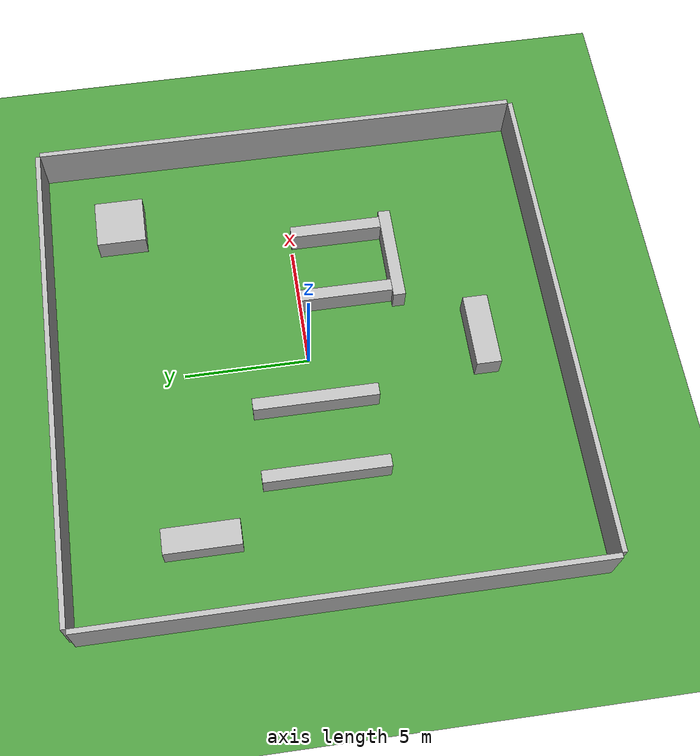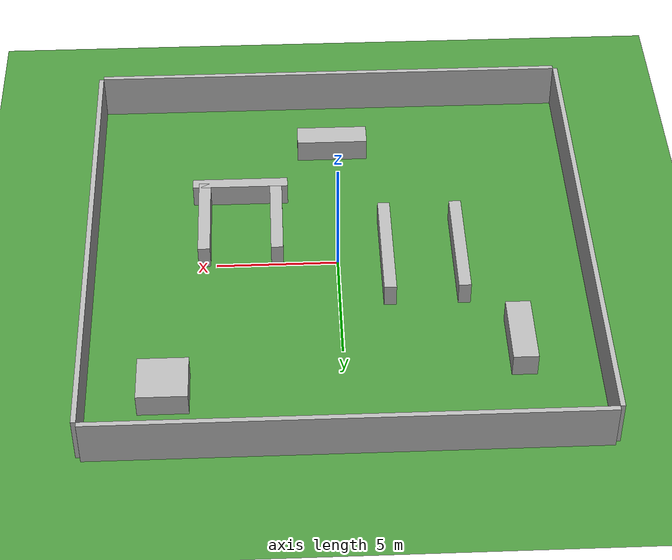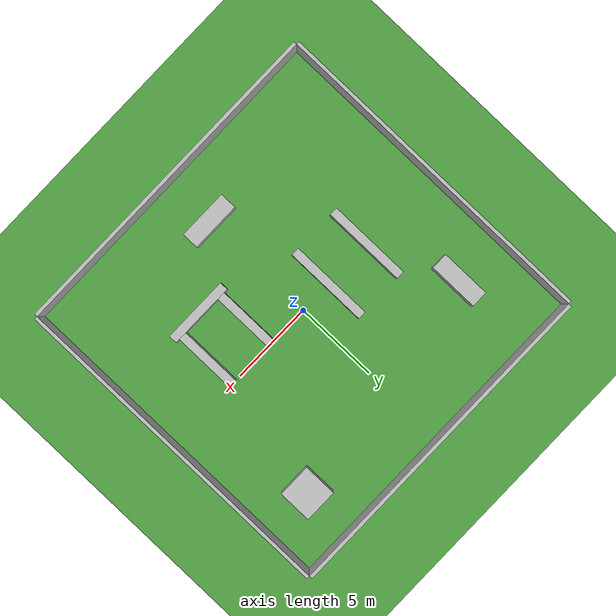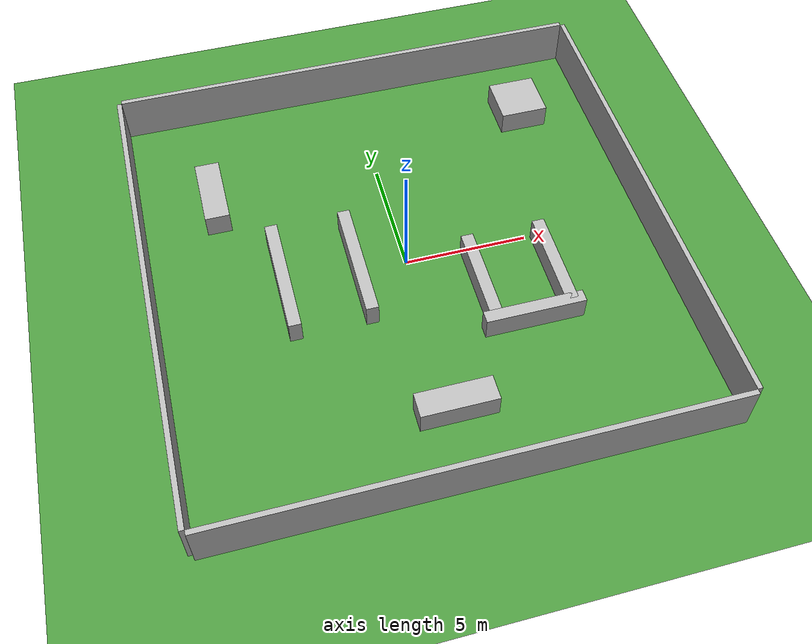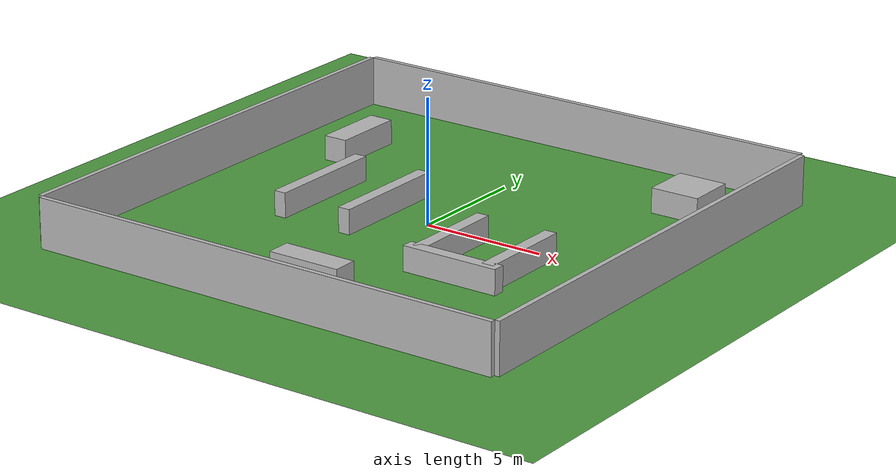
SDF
<?xml version='1.0' encoding='utf-8'?>
<sdf version="1.6">
  <world name="default">
    <physics type="ode">
      <real_time_update_rate>1000</real_time_update_rate>
      <gravity>0 0 -9.81</gravity>
    </physics>

    <!-- Ground plane -->
    <model name="ground_plane">
      <static>true</static>
      <link name="ground_link">
        <collision name="collision">
          <geometry>
            <plane>
              <normal>0 0 1</normal>
              <size>20 20</size>
            </plane>
          </geometry>
        </collision>
        <visual name="visual">
          <geometry>
            <plane>
              <normal>0 0 1</normal>
              <size>20 20</size>
            </plane>
          </geometry>
          <material>
            <script>
              <uri>file://media/materials/scripts/gazebo.material</uri>
              <name>Gazebo/Grass</name>
            </script>
          </material>
        </visual>
      </link>
    </model>

    <!-- World boundaries -->
    <model name="wall_north">
      <static>true</static>
      <pose>0 10.1 1.0 0 0 0</pose>
      <link name="link">
        <collision name="collision">
          <geometry>
            <box><size>20 0.2 2.0</size></box>
          </geometry>
        </collision>
        <visual name="visual">
          <geometry>
            <box><size>20 0.2 2.0</size></box>
          </geometry>
        </visual>
      </link>
    </model>

    <model name="wall_south">
      <static>true</static>
      <pose>0 -10.1 1.0 0 0 0</pose>
      <link name="link">
        <collision name="collision">
          <geometry>
            <box><size>20 0.2 2.0</size></box>
          </geometry>
        </collision>
        <visual name="visual">
          <geometry>
            <box><size>20 0.2 2.0</size></box>
          </geometry>
        </visual>
      </link>
    </model>

    <model name="wall_east">
      <static>true</static>
      <pose>10.1 0 1.0 0 0 0</pose>
      <link name="link">
        <collision name="collision">
          <geometry>
            <box><size>0.2 20 2.0</size></box>
          </geometry>
        </collision>
        <visual name="visual">
          <geometry>
            <box><size>0.2 20 2.0</size></box>
          </geometry>
        </visual>
      </link>
    </model>

    <model name="wall_west">
      <static>true</static>
      <pose>-10.1 0 1.0 0 0 0</pose>
      <link name="link">
        <collision name="collision">
          <geometry>
            <box><size>0.2 20 2.0</size></box>
          </geometry>
        </collision>
        <visual name="visual">
          <geometry>
            <box><size>0.2 20 2.0</size></box>
          </geometry>
        </visual>
      </link>
    </model>

    <!-- Obstacles -->

    <!-- Narrow passage -->
    <model name="narrow_passage_1">
      <static>true</static>
      <pose>-5 0 0.5 0 0 0</pose>
      <link name="link">
        <collision name="collision">
          <geometry><box><size>0.5 5 1</size></box></geometry>
        </collision>
        <visual name="visual">
          <geometry><box><size>0.5 5 1</size></box></geometry>
        </visual>
      </link>
    </model>

    <model name="narrow_passage_2">
      <static>true</static>
      <pose>-2 0 0.5 0 0 0</pose>
      <link name="link">
        <collision name="collision">
          <geometry><box><size>0.5 5 1</size></box></geometry>
        </collision>
        <visual name="visual">
          <geometry><box><size>0.5 5 1</size></box></geometry>
        </visual>
      </link>
    </model>

    <!-- U-shaped obstacle -->
    <model name="u_shape_bottom">
      <static>true</static>
      <pose>4 -4 0.5 0 0 0</pose>
      <link name="link">
        <collision name="collision">
          <geometry><box><size>4 0.5 1</size></box></geometry>
        </collision>
        <visual name="visual">
          <geometry><box><size>4 0.5 1</size></box></geometry>
        </visual>
      </link>
    </model>

    <model name="u_shape_left">
      <static>true</static>
      <pose>2.5 -2 0.5 0 0 0</pose>
      <link name="link">
        <collision name="collision">
          <geometry><box><size>0.5 4 1</size></box></geometry>
        </collision>
        <visual name="visual">
          <geometry><box><size>0.5 4 1</size></box></geometry>
        </visual>
      </link>
    </model>

    <model name="u_shape_right">
      <static>true</static>
      <pose>5.5 -2 0.5 0 0 0</pose>
      <link name="link">
        <collision name="collision">
          <geometry><box><size>0.5 4 1</size></box></geometry>
        </collision>
        <visual name="visual">
          <geometry><box><size>0.5 4 1</size></box></geometry>
        </visual>
      </link>
    </model>

    <!-- Random obstacles -->
    <model name="obstacle_1">
      <static>true</static>
      <pose>7 7 0.5 0 0 0</pose>
      <link name="link">
        <collision name="collision">
          <geometry><box><size>2 2 1</size></box></geometry>
        </collision>
        <visual name="visual">
          <geometry><box><size>2 2 1</size></box></geometry>
        </visual>
      </link>
    </model>

    <model name="obstacle_2">
      <static>true</static>
      <pose>-7 5 0.5 0 0 0</pose>
      <link name="link">
        <collision name="collision">
          <geometry><box><size>1 3 1</size></box></geometry>
        </collision>
        <visual name="visual">
          <geometry><box><size>1 3 1</size></box></geometry>
        </visual>
      </link>
    </model>

    <model name="obstacle_3">
      <static>true</static>
      <pose>0 -7 0.5 0 0 0</pose>
      <link name="link">
        <collision name="collision">
          <geometry><box><size>3 1 1</size></box></geometry>
        </collision>
        <visual name="visual">
          <geometry><box><size>3 1 1</size></box></geometry>
        </visual>
      </link>
    </model>

    <!-- Light -->
    <include>
      <uri>model://sun</uri>
    </include>

  </world>
</sdf>
